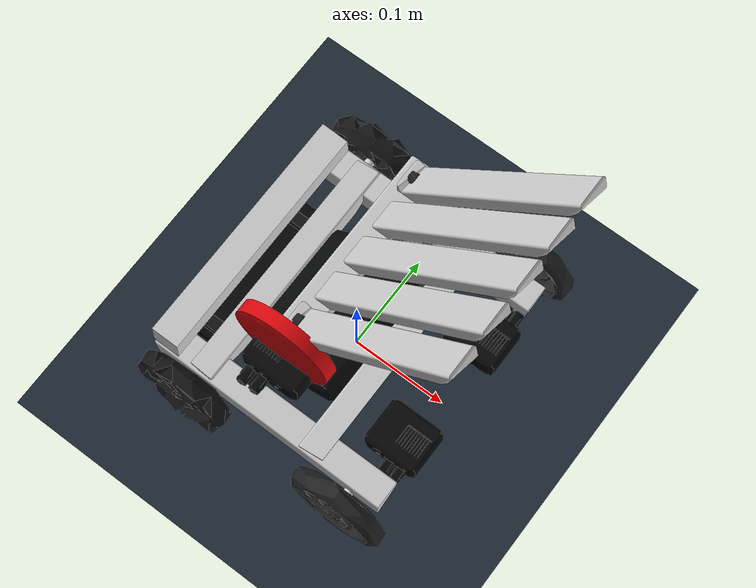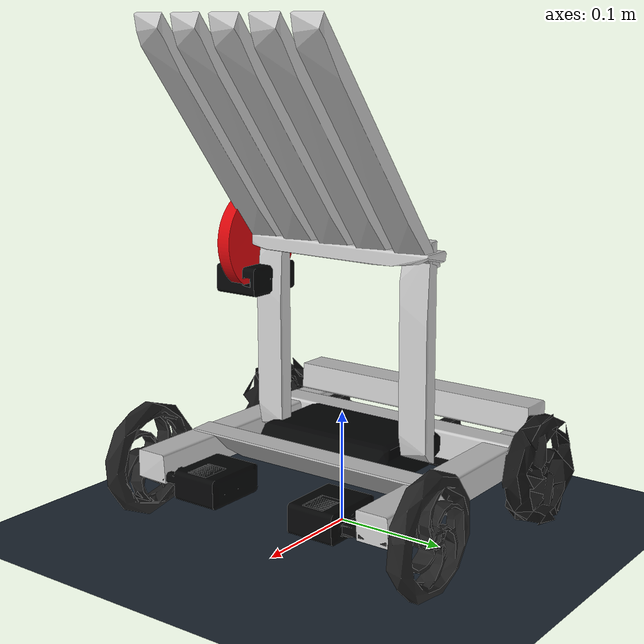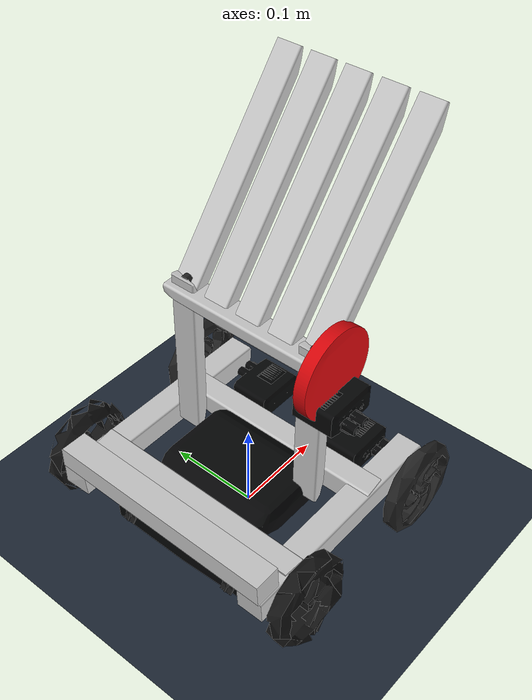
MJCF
<mujoco model="static_concept_NOT_physics_ready"><compiler angle="radian" autolimits="true" /><option gravity="0 0 -9.81" timestep=".002" integrator="implicitfast" iterations="80" /><visual><global offwidth="1200" offheight="900" /><headlight ambient=".4 .4 .4" diffuse=".65 .65 .65" /></visual><asset><mesh name="concept_p00002" file="/Users/joshuamichealscarano/Documents/AI-Vex-Project-1:5:26/data/cad_assets/clawbot/parts/p00002_lod.obj" scale=".001 .001 .001" inertia="shell" /><mesh name="concept_p00003" file="/Users/joshuamichealscarano/Documents/AI-Vex-Project-1:5:26/data/cad_assets/clawbot/parts/p00003_lod.obj" scale=".001 .001 .001" inertia="shell" /><mesh name="concept_p00004" file="/Users/joshuamichealscarano/Documents/AI-Vex-Project-1:5:26/data/cad_assets/clawbot/parts/p00004_lod.obj" scale=".001 .001 .001" inertia="shell" /><mesh name="concept_p00005" file="/Users/joshuamichealscarano/Documents/AI-Vex-Project-1:5:26/data/cad_assets/clawbot/parts/p00005_lod.obj" scale=".001 .001 .001" inertia="shell" /><mesh name="concept_p00006" file="/Users/joshuamichealscarano/Documents/AI-Vex-Project-1:5:26/data/cad_assets/clawbot/parts/p00006_lod.obj" scale=".001 .001 .001" inertia="shell" /><mesh name="concept_p00007" file="/Users/joshuamichealscarano/Documents/AI-Vex-Project-1:5:26/data/cad_assets/clawbot/parts/p00007_lod.obj" scale=".001 .001 .001" inertia="shell" /><mesh name="concept_p00008" file="/Users/joshuamichealscarano/Documents/AI-Vex-Project-1:5:26/data/cad_assets/clawbot/parts/p00008_lod.obj" scale=".001 .001 .001" inertia="shell" /><mesh name="concept_p00009" file="/Users/joshuamichealscarano/Documents/AI-Vex-Project-1:5:26/data/cad_assets/clawbot/parts/p00009_lod.obj" scale=".001 .001 .001" inertia="shell" /><mesh name="concept_p00010" file="/Users/joshuamichealscarano/Documents/AI-Vex-Project-1:5:26/data/cad_assets/clawbot/parts/p00010_lod.obj" scale=".001 .001 .001" inertia="shell" /><mesh name="concept_p00011" file="/Users/joshuamichealscarano/Documents/AI-Vex-Project-1:5:26/data/cad_assets/clawbot/parts/p00011_lod.obj" scale=".001 .001 .001" inertia="shell" /><mesh name="concept_p00012" file="/Users/joshuamichealscarano/Documents/AI-Vex-Project-1:5:26/data/cad_assets/clawbot/parts/p00012_lod.obj" scale=".001 .001 .001" inertia="shell" /><mesh name="concept_p00015" file="/Users/joshuamichealscarano/Documents/AI-Vex-Project-1:5:26/data/cad_assets/clawbot/parts/p00015_lod.obj" scale=".001 .001 .001" inertia="shell" /><mesh name="concept_p00019" file="/Users/joshuamichealscarano/Documents/AI-Vex-Project-1:5:26/data/cad_assets/clawbot/parts/p00019_lod.obj" scale=".001 .001 .001" inertia="shell" /><mesh name="concept_p00022" file="/Users/joshuamichealscarano/Documents/AI-Vex-Project-1:5:26/data/cad_assets/clawbot/parts/p00022_lod.obj" scale=".001 .001 .001" inertia="shell" /></asset><worldbody><light pos="0 0 5" dir="0 0 -1" /><geom type="plane" size="2 2 .1" rgba=".12 .16 .21 1" /><geom name="concept_i00000" type="mesh" mesh="concept_p00002" pos="0.09847540173296034 0.060476939280389594 0.05307428532526439" quat="3.334775382891007e-17 1.7181433922416647e-15 2.6074219964273e-15 1.0" contype="0" conaffinity="0" mass="0" group="1" rgba="0.01850022003054619 0.021219009533524513 0.023153366521000862 1" /><geom name="concept_i00001" type="mesh" mesh="concept_p00003" pos="0.10162536980693931 0.12745193928039053 0.05307432210640686" quat="0.5000000000000012 -0.4999999999999988 -0.49999999999999956 0.5000000000000004" contype="0" conaffinity="0" mass="0" group="1" rgba="0.13286831974983215 0.13286831974983215 0.13286831974983215 1" /><geom name="concept_i00002" type="mesh" mesh="concept_p00004" pos="0.08892536492067532 0.1369894392803905 0.05307431381385745" quat="0.7013456129747524 0.7013456129747518 -0.09007958237619262 0.09007958237619197" contype="0" conaffinity="0" mass="0" group="1" rgba="0.8227857351303101 0.8227857351303101 0.8227857351303101 1" /><geom name="concept_i00003" type="mesh" mesh="concept_p00005" pos="-0.06870690124986707 0.1207019392803905 0.06788219626833665" quat="-7.997658461420492e-16 -0.7071067811865475 7.997658461420492e-16 0.7071067811865476" contype="0" conaffinity="0" mass="0" group="1" rgba="0.7912979125976562 0.7912979125976562 0.7912979125976562 1" /><geom name="concept_i00004" type="mesh" mesh="concept_p00004" pos="-0.0889253012498671 0.13063943928039048 0.053124996268336604" quat="-0.28744373618483376 0.28744373618483204 0.6460465142140333 0.646046514214035" contype="0" conaffinity="0" mass="0" group="1" rgba="0.8227857351303101 0.8227857351303101 0.8227857351303101 1" /><geom name="concept_i00005" type="mesh" mesh="concept_p00006" pos="-0.10801850626531498 0.10192317611757651 0.05308082182278137" quat="0.6977307193850331 0.7162406181305105 -0.009372891440620847 -0.009130666597286166" contype="0" conaffinity="0" mass="0" group="1" rgba="0.07421357184648514 0.07421357184648514 0.07421357184648514 1" /><geom name="concept_i00006" type="mesh" mesh="concept_p00004" pos="-0.08892530124986721 -0.13053556071960953 0.053124996268337166" quat="-0.18023609565446094 -0.18023609565445992 -0.6837506488649452 0.6837506488649491" contype="0" conaffinity="0" mass="0" group="1" rgba="0.8227857351303101 0.8227857351303101 0.8227857351303101 1" /><geom name="concept_i00007" type="mesh" mesh="concept_p00007" pos="-0.12087530124986669 5.1939280390665755e-05 0.0753749962683372" quat="-5.132757762306371e-16 0.7071067811865476 0.7071067811865475 -1.916545911179263e-15" contype="0" conaffinity="0" mass="0" group="1" rgba="0.7912979125976562 0.7912979125976562 0.7912979125976562 1" /><geom name="concept_i00008" type="mesh" mesh="concept_p00008" pos="-0.10132530124986698 -0.0824980607196095 0.06477499626833727" quat="-1.718143392241685e-15 1.5956287909886566e-30 1.0 -1.269817584415025e-15" contype="0" conaffinity="0" mass="0" group="1" rgba="0.07421357184648514 0.07421357184648514 0.07421357184648514 1" /><geom name="concept_i00009" type="mesh" mesh="concept_p00009" pos="-0.10117474815398257 -0.0145180737735457 0.05702499626833699" quat="2.069509665702966e-15 0.7071067811865476 -0.7071067811865475 -2.7371641608338823e-16" contype="0" conaffinity="0" mass="0" group="1" rgba="0.01850022003054619 0.021219009533524513 0.023153366521000862 1" /><geom name="concept_i00010" type="mesh" mesh="concept_p00010" pos="0.08892519494084633 -0.1466410808753605 0.05307425157339762" quat="-2.0293389754430299e-16 -0.08802630327534827 2.9172759690976574e-15 0.996118150588411" contype="0" conaffinity="0" mass="0" group="1" rgba="0.13286831974983215 0.13286831974983215 0.13286831974983215 1" /><geom name="concept_i00011" type="mesh" mesh="concept_p00003" pos="0.10162536980694731 -0.10154806071960949 0.05307432506640584" quat="0.4999999999999989 0.5000000000000011 0.5000000000000006 0.49999999999999956" contype="0" conaffinity="0" mass="0" group="1" rgba="0.13286831974983215 0.13286831974983215 0.13286831974983215 1" /><geom name="concept_i00012" type="mesh" mesh="concept_p00011" pos="-0.01879590124986668 -0.00629806071960919 0.06605827777833696" quat="0.7071067811865476 -7.212612232078573e-16 -7.212612232078573e-16 -0.7071067811865475" contype="0" conaffinity="0" mass="0" group="1" rgba="0.01850022003054619 0.021219009533524513 0.023153366521000862 1" /><geom name="concept_i00013" type="mesh" mesh="concept_p00012" pos="-0.0889252496749306 -0.13847306071960952 0.05312572590331531" quat="0.5035145532104867 -1.468045305130825e-15 -0.8639867445194076 2.466127429910771e-15" contype="0" conaffinity="0" mass="0" group="1" rgba="0.07421357184648514 0.07421357184648514 0.07421357184648514 1" /><geom name="concept_i00014" type="mesh" mesh="concept_p00004" pos="0.0889253665457943 -0.13053556071960953 0.05307433498407808" quat="0.5420722269318813 0.542072226931878 0.45404592365653007 -0.45404592365653285" contype="0" conaffinity="0" mass="0" group="1" rgba="0.8227857351303101 0.8227857351303101 0.8227857351303101 1" /><geom name="concept_i00015" type="mesh" mesh="concept_p00008" pos="-0.10132530124986698 0.0445019392803905 0.06477499626833702" quat="-1.718143392241685e-15 1.5956287909886566e-30 1.0 -1.269817584415025e-15" contype="0" conaffinity="0" mass="0" group="1" rgba="0.07421357184648514 0.07421357184648514 0.07421357184648514 1" /><geom name="concept_i00016" type="mesh" mesh="concept_p00006" pos="-0.10797530124986718 -0.12744361319812347 0.05312499626833723" quat="0.7071067811865496 0.7071067811865455 1.3130416223726868e-15 -1.1167800650372129e-15" contype="0" conaffinity="0" mass="0" group="1" rgba="0.07421357184648514 0.07421357184648514 0.07421357184648514 1" /><geom name="concept_i00017" type="mesh" mesh="concept_p00007" pos="-0.00637530124986668 -0.1144480607196095 0.07217499626833701" quat="1.0 -1.13103970633688e-15 1.71814339224168e-15 -1.9393863700789842e-30" contype="0" conaffinity="0" mass="0" group="1" rgba="0.7912979125976562 0.7912979125976562 0.7912979125976562 1" /><geom name="concept_i00018" type="mesh" mesh="concept_p00002" pos="0.09847540988038332 -0.060373060719609496 0.05307437324521969" quat="-1.71814339224168e-15 3.3347753828916424e-17 1.0 6.22898339909835e-16" contype="0" conaffinity="0" mass="0" group="1" rgba="0.01850022003054619 0.021219009533524513 0.023153366521000862 1" /><geom name="concept_i00019" type="mesh" mesh="concept_p00006" pos="-0.10801850626531498 0.1275147638811005 0.05308082182278132" quat="0.6977307193850312 -0.7162406181305124 -0.009372891440620808 0.009130666597286133" contype="0" conaffinity="0" mass="0" group="1" rgba="0.07421357184648514 0.07421357184648514 0.07421357184648514 1" /><geom name="concept_i00020" type="mesh" mesh="concept_p00007" pos="-0.00637530124986668 0.1145519392803905 0.07217499626833655" quat="2.1549983523702357e-30 1.71814339224168e-15 9.92261828258735e-16 1.0" contype="0" conaffinity="0" mass="0" group="1" rgba="0.7912979125976562 0.7912979125976562 0.7912979125976562 1" /><geom name="concept_i00021" type="mesh" mesh="concept_p00012" pos="-0.08892511942486203 0.1385769392803905 0.05312570476452072" quat="-1.2006286119007665e-15 0.9334902503988669 -2.8411825133624137e-16 0.3586027780292016" contype="0" conaffinity="0" mass="0" group="1" rgba="0.07421357184648514 0.07421357184648514 0.07421357184648514 1" /><geom name="concept_i00022" type="mesh" mesh="concept_p00003" pos="0.10162537143205631 -0.12734806071960952 0.05307432669152851" quat="0.5000000000000022 0.4999999999999978 -0.5000000000000007 -0.49999999999999944" contype="0" conaffinity="0" mass="0" group="1" rgba="0.13286831974983215 0.13286831974983215 0.13286831974983215 1" /><geom name="concept_i00023" type="mesh" mesh="concept_p00005" pos="0.030556298750133323 -0.12059806071960949 0.06788219626833676" quat="0.7071067811865451 -9.224293194767208e-16 0.7071067811865499 -8.733639301428571e-16" contype="0" conaffinity="0" mass="0" group="1" rgba="0.7912979125976562 0.7912979125976562 0.7912979125976562 1" /><geom name="concept_i00024" type="mesh" mesh="concept_p00010" pos="0.08892517415894634 0.14653720231457948 0.053074317758766365" quat="0.12739176708931557 2.5817599716928946e-16 0.9918524777797663 1.5884217907341772e-15" contype="0" conaffinity="0" mass="0" group="1" rgba="0.13286831974983215 0.13286831974983215 0.13286831974983215 1" /><geom name="concept_i00025" type="mesh" mesh="concept_p00003" pos="0.10162537143205631 0.1016519392803905 0.05307432669152795" quat="0.5000000000000021 0.49999999999999784 -0.5000000000000004 -0.49999999999999956" contype="0" conaffinity="0" mass="0" group="1" rgba="0.13286831974983215 0.13286831974983215 0.13286831974983215 1" /><geom name="concept_new0026" type="mesh" mesh="concept_p00015" pos="-0.0055500000000001486 -0.07620000000000016 0.19775" quat="0.7071067811865476 0.0 -0.7071067811865475 0.0" contype="0" conaffinity="0" mass="0" group="1" rgba="0.7912979125976562 0.7912979125976562 0.7912979125976562 1" /><geom name="concept_new0027" type="mesh" mesh="concept_p00003" pos="0.002832099999988797 -0.07620000340627442 0.2439999951137312" quat="1.0 0.0 0.0 0.0" contype="0" conaffinity="0" mass="0" group="1" rgba="0.13286831974983215 0.13286831974983215 0.13286831974983215 1" /><geom name="concept_new0028" type="mesh" mesh="concept_p00015" pos="-0.0055500000000001486 0.07619999999999985 0.19775" quat="0.7071067811865476 0.0 -0.7071067811865475 0.0" contype="0" conaffinity="0" mass="0" group="1" rgba="0.7912979125976562 0.7912979125976562 0.7912979125976562 1" /><geom name="concept_new0029" type="mesh" mesh="concept_p00003" pos="0.002832099999988797 0.07619999659372559 0.2439999951137312" quat="1.0 0.0 0.0 0.0" contype="0" conaffinity="0" mass="0" group="1" rgba="0.13286831974983215 0.13286831974983215 0.13286831974983215 1" /><geom name="concept_new0030" type="mesh" mesh="concept_p00019" pos="0.06704327145525894 -0.07620000000000016 0.3388261686064373" quat="0.8987940462991669 0.0 -0.43837114678907746 0.0" contype="0" conaffinity="0" mass="0" group="1" rgba="0.7912979125976562 0.7912979125976562 0.7912979125976562 1" /><geom name="concept_new0031" type="mesh" mesh="concept_p00019" pos="0.06704327145525894 -0.03810000000000015 0.3388261686064373" quat="0.8987940462991669 0.0 -0.43837114678907746 0.0" contype="0" conaffinity="0" mass="0" group="1" rgba="0.7912979125976562 0.7912979125976562 0.7912979125976562 1" /><geom name="concept_new0032" type="mesh" mesh="concept_p00019" pos="0.06704327145525894 -1.4921397450962105e-16 0.3388261686064373" quat="0.8987940462991669 0.0 -0.43837114678907746 0.0" contype="0" conaffinity="0" mass="0" group="1" rgba="0.7912979125976562 0.7912979125976562 0.7912979125976562 1" /><geom name="concept_new0033" type="mesh" mesh="concept_p00019" pos="0.06704327145525894 0.038099999999999856 0.3388261686064373" quat="0.8987940462991669 0.0 -0.43837114678907746 0.0" contype="0" conaffinity="0" mass="0" group="1" rgba="0.7912979125976562 0.7912979125976562 0.7912979125976562 1" /><geom name="concept_new0034" type="mesh" mesh="concept_p00019" pos="0.06704327145525894 0.07619999999999985 0.3388261686064373" quat="0.8987940462991669 0.0 -0.43837114678907746 0.0" contype="0" conaffinity="0" mass="0" group="1" rgba="0.7912979125976562 0.7912979125976562 0.7912979125976562 1" /><geom name="concept_new0035" type="mesh" mesh="concept_p00015" pos="1.4921397450962105e-16 0.03175 0.24955000000000016" quat="0.7071067811865476 0.0 0.0 0.7071067811865475" contype="0" conaffinity="0" mass="0" group="1" rgba="0.7912979125976562 0.7912979125976562 0.7912979125976562 1" /><geom name="concept_new0036" type="mesh" mesh="concept_p00002" pos="-3.518717340078581e-08 -0.0962875 0.2099999601137357" quat="1.0 0.0 0.0 0.0" contype="0" conaffinity="0" mass="0" group="1" rgba="0.01850022003054619 0.021219009533524513 0.023153366521000862 1" /><geom name="concept_new0037" type="mesh" mesh="concept_p00022" pos="0.0 -0.09420000000000074 0.244" quat="1.0 0.0 0.0 0.0" contype="0" conaffinity="0" mass="0" group="1" rgba="0.8549926280975342 0.02518685907125473 0.0423114113509655 1" /></worldbody></mujoco>
